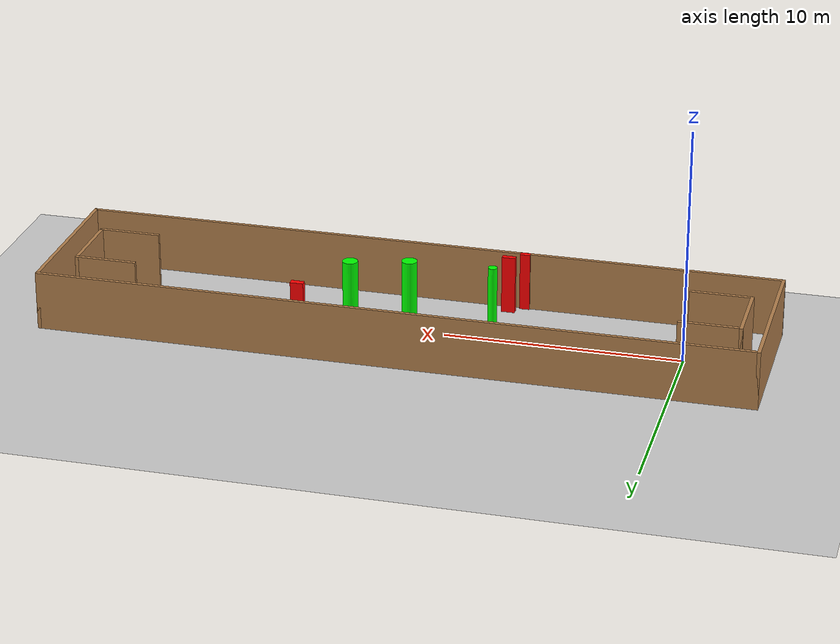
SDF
<sdf version="1.7">
 <world name="default">
  <light name="sun" type="directional">
   <pose>0 0 10 0 -0 0</pose>
   <diffuse>0.8 0.8 0.8 1</diffuse>
   <specular>0.2 0.2 0.2 1</specular>
   <attenuation>
    <range>1000</range>
    <constant>0.9</constant>
    <linear>0.01</linear>
    <quadratic>0.001</quadratic>
   </attenuation>
   <direction>-0.5 0.1 -0.9</direction>
   <spot><inner_angle>0</inner_angle><outer_angle>0</outer_angle><falloff>0</falloff></spot>
  </light>
  <model name="ground_plane">
   <static>1</static>
   <link name="link">
    <collision name="collision">
     <geometry><plane><normal>0 0 1</normal><size>100 100</size></plane></geometry>
     <surface>
      <contact><collide_bitmask>65535</collide_bitmask></contact>
      <friction><ode><mu>100</mu><mu2>50</mu2></ode></friction>
     </surface>
    </collision>
    <visual name="visual">
     <cast_shadows>0</cast_shadows>
     <geometry><plane><normal>0 0 1</normal><size>100 100</size></plane></geometry>
     <material>
      <script><uri>file://media/materials/scripts/gazebo.material</uri><name>Gazebo/Grey</name></script>
     </material>
    </visual>
   </link>
  </model>
  <gravity>0 0 -9.8</gravity>
  <magnetic_field>6e-06 2.3e-05 -4.2e-05</magnetic_field>
  <atmosphere type="adiabatic"/>
  <physics type="ode">
   <max_step_size>0.001</max_step_size>
   <real_time_factor>1</real_time_factor>
   <real_time_update_rate>1000</real_time_update_rate>
  </physics>
  <scene><ambient>0.4 0.4 0.4 1</ambient><background>0.7 0.7 0.7 1</background><shadows>1</shadows></scene>
  <spherical_coordinates>
   <surface_model>EARTH_WGS84</surface_model>
   <latitude_deg>0</latitude_deg>
   <longitude_deg>0</longitude_deg>
   <elevation>0</elevation>
   <heading_deg>0</heading_deg>
  </spherical_coordinates>
  <model name="my_base_walls">
   <link name="Wall_0">
    <collision name="Wall_0_Collision">
     <geometry><box><size>7.15 0.15 2.5</size></box></geometry>
     <pose>0 0 1.25 0 -0 0</pose>
    </collision>
    <visual name="Wall_0_Visual">
     <pose>0 0 1.25 0 -0 0</pose>
     <geometry><box><size>7.15 0.15 2.5</size></box></geometry>
     <material>
      <script><uri>file://media/materials/scripts/gazebo.material</uri><name>Gazebo/Wood</name></script>
      <ambient>1 1 1 1</ambient>
     </material>
     <meta><layer>0</layer></meta>
    </visual>
    <pose>-15 0 0 0 -0 1.5708</pose>
   </link>
   <link name="Wall_10">
    <collision name="Wall_10_Collision">
     <geometry><box><size>2.65 0.15 2.5</size></box></geometry>
     <pose>0 0 1.25 0 -0 0</pose>
    </collision>
    <visual name="Wall_10_Visual">
     <pose>0 0 1.25 0 -0 0</pose>
     <geometry><box><size>2.65 0.15 2.5</size></box></geometry>
     <material>
      <script><uri>file://media/materials/scripts/gazebo.material</uri><name>Gazebo/Wood</name></script>
      <ambient>1 1 1 1</ambient>
     </material>
     <meta><layer>0</layer></meta>
    </visual>
    <pose>-12.75 -1.5 0 0 -0 0</pose>
   </link>
   <link name="Wall_12">
    <collision name="Wall_12_Collision">
     <geometry><box><size>2.65 0.15 2.5</size></box></geometry>
     <pose>0 0 1.25 0 -0 0</pose>
    </collision>
    <visual name="Wall_12_Visual">
     <pose>0 0 1.25 0 -0 0</pose>
     <geometry><box><size>2.65 0.15 2.5</size></box></geometry>
     <material>
      <script><uri>file://media/materials/scripts/gazebo.material</uri><name>Gazebo/Wood</name></script>
      <ambient>1 1 1 1</ambient>
     </material>
     <meta><layer>0</layer></meta>
    </visual>
    <pose>-12.75 1.5 0 0 -0 0</pose>
   </link>
   <link name="Wall_14">
    <collision name="Wall_14_Collision">
     <geometry><box><size>3.15 0.15 2.5</size></box></geometry>
     <pose>0 0 1.25 0 -0 0</pose>
    </collision>
    <visual name="Wall_14_Visual">
     <pose>0 0 1.25 0 -0 0</pose>
     <geometry><box><size>3.15 0.15 2.5</size></box></geometry>
     <material>
      <script><uri>file://media/materials/scripts/gazebo.material</uri><name>Gazebo/Wood</name></script>
      <ambient>1 1 1 1</ambient>
     </material>
     <meta><layer>0</layer></meta>
    </visual>
    <pose>14 0 0 0 -0 -1.5708</pose>
   </link>
   <link name="Wall_15">
    <collision name="Wall_15_Collision">
     <geometry><box><size>2.65 0.15 2.5</size></box></geometry>
     <pose>0 0 1.25 0 -0 0</pose>
    </collision>
    <visual name="Wall_15_Visual">
     <pose>0 0 1.25 0 -0 0</pose>
     <geometry><box><size>2.65 0.15 2.5</size></box></geometry>
     <material>
      <script><uri>file://media/materials/scripts/gazebo.material</uri><name>Gazebo/Wood</name></script>
      <ambient>1 1 1 1</ambient>
     </material>
     <meta><layer>0</layer></meta>
    </visual>
    <pose>12.75 -1.5 0 0 -0 3.14159</pose>
   </link>
   <link name="Wall_17">
    <collision name="Wall_17_Collision">
     <geometry><box><size>2.65 0.15 2.5</size></box></geometry>
     <pose>0 0 1.25 0 -0 0</pose>
    </collision>
    <visual name="Wall_17_Visual">
     <pose>0 0 1.25 0 -0 0</pose>
     <geometry><box><size>2.65 0.15 2.5</size></box></geometry>
     <material>
      <script><uri>file://media/materials/scripts/gazebo.material</uri><name>Gazebo/Wood</name></script>
      <ambient>1 1 1 1</ambient>
     </material>
     <meta><layer>0</layer></meta>
    </visual>
    <pose>12.75 1.5 0 0 -0 3.14159</pose>
   </link>
   <link name="Wall_2">
    <collision name="Wall_2_Collision">
     <geometry><box><size>30.15 0.15 2.5</size></box></geometry>
     <pose>0 0 1.25 0 -0 0</pose>
    </collision>
    <visual name="Wall_2_Visual">
     <pose>0 0 1.25 0 -0 0</pose>
     <geometry><box><size>30.15 0.15 2.5</size></box></geometry>
     <material>
      <script><uri>file://media/materials/scripts/gazebo.material</uri><name>Gazebo/Wood</name></script>
      <ambient>1 1 1 1</ambient>
     </material>
     <meta><layer>0</layer></meta>
    </visual>
    <pose>-0 -3.5 0 0 -0 0</pose>
   </link>
   <link name="Wall_4">
    <collision name="Wall_4_Collision">
     <geometry><box><size>30.15 0.15 2.5</size></box></geometry>
     <pose>0 0 1.25 0 -0 0</pose>
    </collision>
    <visual name="Wall_4_Visual">
     <pose>0 0 1.25 0 -0 0</pose>
     <geometry><box><size>30.15 0.15 2.5</size></box></geometry>
     <material>
      <script><uri>file://media/materials/scripts/gazebo.material</uri><name>Gazebo/Wood</name></script>
      <ambient>1 1 1 1</ambient>
     </material>
     <meta><layer>0</layer></meta>
    </visual>
    <pose>-0 3.5 0 0 -0 0</pose>
   </link>
   <link name="Wall_6">
    <collision name="Wall_6_Collision">
     <geometry><box><size>7.15 0.15 2.5</size></box></geometry>
     <pose>0 0 1.25 0 -0 0</pose>
    </collision>
    <visual name="Wall_6_Visual">
     <pose>0 0 1.25 0 -0 0</pose>
     <geometry><box><size>7.15 0.15 2.5</size></box></geometry>
     <material>
      <script><uri>file://media/materials/scripts/gazebo.material</uri><name>Gazebo/Wood</name></script>
      <ambient>1 1 1 1</ambient>
     </material>
     <meta><layer>0</layer></meta>
    </visual>
    <pose>15 0 0 0 -0 -1.5708</pose>
   </link>
   <link name="Wall_9">
    <collision name="Wall_9_Collision">
     <geometry><box><size>3.15 0.15 2.5</size></box></geometry>
     <pose>0 0 1.25 0 -0 0</pose>
    </collision>
    <visual name="Wall_9_Visual">
     <pose>0 0 1.25 0 -0 0</pose>
     <geometry><box><size>3.15 0.15 2.5</size></box></geometry>
     <material>
      <script><uri>file://media/materials/scripts/gazebo.material</uri><name>Gazebo/Wood</name></script>
      <ambient>1 1 1 1</ambient>
     </material>
     <meta><layer>0</layer></meta>
    </visual>
    <pose>-14 0 0 0 -0 -1.5708</pose>
   </link>
   <static>1</static>
   <pose>11.5 0 0 0 -0 0</pose>
  </model>
  <model name="cylinder1">
   <static>1</static>
   <link name="link">
    <inertial>
     <mass>1</mass>
     <inertia><ixx>0.5</ixx><ixy>0</ixy><ixz>0</ixz><iyy>0.5</iyy><iyz>0</iyz><izz>1</izz></inertia>
    </inertial>
    <collision name="collision">
     <geometry><cylinder><radius>0.32987031021189395</radius><length>2.5</length></cylinder></geometry>
    </collision>
    <visual name="visual">
     <geometry><cylinder><radius>0.32987031021189395</radius><length>2.5</length></cylinder></geometry>
     <material>
      <ambient>0 1 0 1</ambient>
      <diffuse>0 1 0 1</diffuse>
      <specular>0.1 0.1 0.1 1</specular>
      <emissive>0 0 0 0</emissive>
     </material>
    </visual>
   </link>
   <pose>11.900149745340059 -1.5437073103614416 1.25 0 0 0</pose>
  </model>
  <model name="cylinder2">
   <static>1</static>
   <link name="link">
    <inertial>
     <mass>1</mass>
     <inertia><ixx>0.5</ixx><ixy>0</ixy><ixz>0</ixz><iyy>0.5</iyy><iyz>0</iyz><izz>1</izz></inertia>
    </inertial>
    <collision name="collision">
     <geometry><cylinder><radius>0.19547802732154962</radius><length>2.5</length></cylinder></geometry>
    </collision>
    <visual name="visual">
     <geometry><cylinder><radius>0.19547802732154962</radius><length>2.5</length></cylinder></geometry>
     <material>
      <ambient>0 1 0 1</ambient>
      <diffuse>0 1 0 1</diffuse>
      <specular>0.1 0.1 0.1 1</specular>
      <emissive>0 0 0 0</emissive>
     </material>
    </visual>
   </link>
   <pose>8.375725254033888 -1.7520976410525206 1.25 0 0 0</pose>
  </model>
  <model name="cylinder3">
   <static>1</static>
   <link name="link">
    <inertial>
     <mass>1</mass>
     <inertia><ixx>0.5</ixx><ixy>0</ixy><ixz>0</ixz><iyy>0.5</iyy><iyz>0</iyz><izz>1</izz></inertia>
    </inertial>
    <collision name="collision">
     <geometry><cylinder><radius>0.3284155044372645</radius><length>2.5</length></cylinder></geometry>
    </collision>
    <visual name="visual">
     <geometry><cylinder><radius>0.3284155044372645</radius><length>2.5</length></cylinder></geometry>
     <material>
      <ambient>0 1 0 1</ambient>
      <diffuse>0 1 0 1</diffuse>
      <specular>0.1 0.1 0.1 1</specular>
      <emissive>0 0 0 0</emissive>
     </material>
    </visual>
   </link>
   <pose>14.293014979095737 -0.9160884452615585 1.25 0 0 0</pose>
  </model>
  <model name="box1">
   <static>1</static>
   <link name="link">
    <inertial>
     <mass>1</mass>
     <inertia><ixx>0.083</ixx><ixy>0</ixy><ixz>0</ixz><iyy>0.083</iyy><iyz>0</iyz><izz>0.083</izz></inertia>
    </inertial>
    <collision name="collision">
     <geometry><box><size>0.5735844231146956 0.22039459541829665 2.5</size></box></geometry>
    </collision>
    <visual name="visual">
     <geometry><box><size>0.5735844231146956 0.22039459541829665 2.5</size></box></geometry>
     <material>
      <ambient>1 0 0 1</ambient>
      <diffuse>1 0 0 1</diffuse>
      <specular>0.1 0.1 0.1 1</specular>
      <emissive>0 0 0 0</emissive>
     </material>
    </visual>
    <sensor name="my_contact" type="contact">
     <contact><collision>box_collision</collision><topic>__default_topic__</topic></contact>
    </sensor>
   </link>
   <pose>7.953543835474294 -2.9841785109506027 1.25 0 0 0</pose>
  </model>
  <model name="box2">
   <static>1</static>
   <link name="link">
    <inertial>
     <mass>1</mass>
     <inertia><ixx>0.083</ixx><ixy>0</ixy><ixz>0</ixz><iyy>0.083</iyy><iyz>0</iyz><izz>0.083</izz></inertia>
    </inertial>
    <collision name="collision">
     <geometry><box><size>0.5513804822013519 0.27132981804990725 2.5</size></box></geometry>
    </collision>
    <visual name="visual">
     <geometry><box><size>0.5513804822013519 0.27132981804990725 2.5</size></box></geometry>
     <material>
      <ambient>1 0 0 1</ambient>
      <diffuse>1 0 0 1</diffuse>
      <specular>0.1 0.1 0.1 1</specular>
      <emissive>0 0 0 0</emissive>
     </material>
    </visual>
    <sensor name="my_contact" type="contact">
     <contact><collision>box_collision</collision><topic>__default_topic__</topic></contact>
    </sensor>
   </link>
   <pose>15.822022467134262 1.6861659444873123 1.25 0 0 0</pose>
  </model>
  <model name="box3">
   <static>1</static>
   <link name="link">
    <inertial>
     <mass>1</mass>
     <inertia><ixx>0.083</ixx><ixy>0</ixy><ixz>0</ixz><iyy>0.083</iyy><iyz>0</iyz><izz>0.083</izz></inertia>
    </inertial>
    <collision name="collision">
     <geometry><box><size>0.4293192568579062 0.2229905538976549 2.5</size></box></geometry>
    </collision>
    <visual name="visual">
     <geometry><box><size>0.4293192568579062 0.2229905538976549 2.5</size></box></geometry>
     <material>
      <ambient>1 0 0 1</ambient>
      <diffuse>1 0 0 1</diffuse>
      <specular>0.1 0.1 0.1 1</specular>
      <emissive>0 0 0 0</emissive>
     </material>
    </visual>
    <sensor name="my_contact" type="contact">
     <contact><collision>box_collision</collision><topic>__default_topic__</topic></contact>
    </sensor>
   </link>
   <pose>7.349329570573898 -3.4531545818742377 1.25 0 0 0</pose>
  </model>
 </world>
</sdf>
